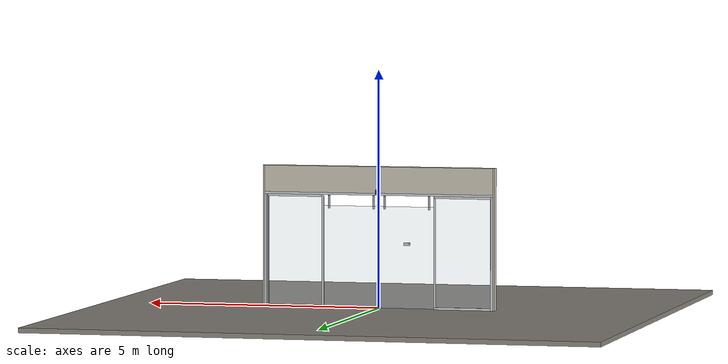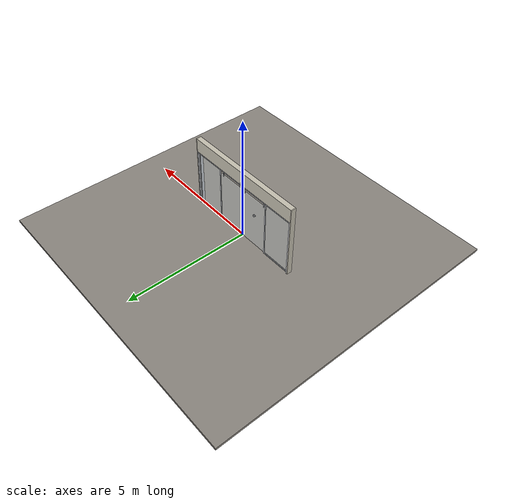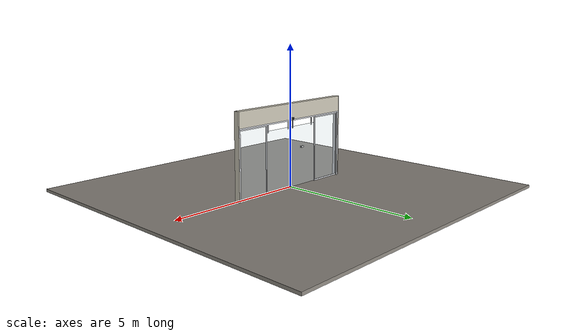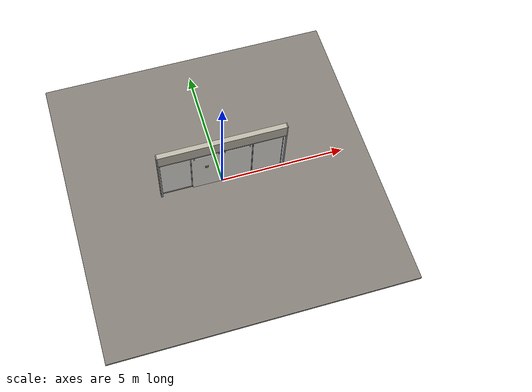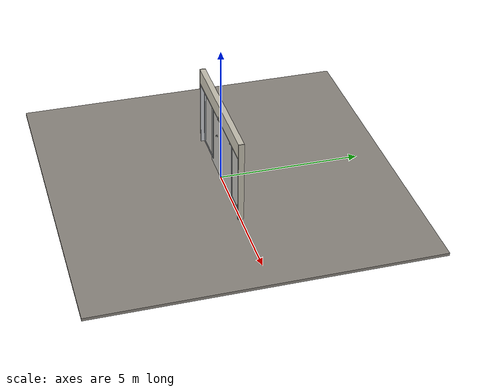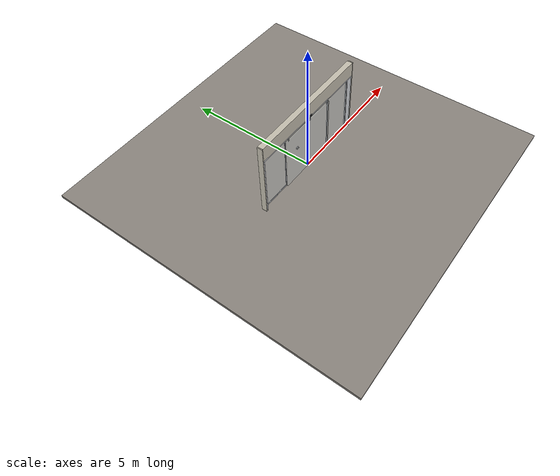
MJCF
<?xml version="1.0" ?>
<mujoco model="db0474_automatic_sliding_full">
  <compiler angle="radian" meshdir="../../hardware" texturedir="../../textures" autolimits="true" inertiafromgeom="false"/>
  <option timestep="0.002" integrator="implicitfast" cone="elliptic" impratio="10" noslip_iterations="3">
    <flag multiccd="enable"/>
  </option>
  <size memory="16M"/>
  <default>
    <geom condim="4" solref="0.005 1" solimp="0.95 0.99 0.001"/>
    <joint solreflimit="0.005 1" solimplimit="0.95 0.99 0.001"/>
    <tendon solreflimit="0.005 1"/>
    <equality solref="0.002 1"/>
  </default>
  <visual>
    <headlight ambient="0.4 0.4 0.4" diffuse="0.7 0.7 0.7" specular="0.2 0.2 0.2"/>
    <quality shadowsize="4096"/>
    <map znear="0.01" zfar="60"/>
  </visual>
  <asset>
    <material name="mat_floor" rgba="0.55 0.53 0.5 1" specular="0.2" shininess="0.15" reflectance="0"/>
    <material name="mat_wall" rgba="0.78 0.76 0.7 1" specular="0.2" shininess="0.1" reflectance="0"/>
    <material name="mat_frame" rgba="0.8 0.81 0.83 1" specular="0.8" shininess="0.6" reflectance="0.4"/>
    <material name="mat_track" rgba="0.8 0.81 0.83 1" specular="0.8" shininess="0.6" reflectance="0.4"/>
    <material name="mat_fixed_glass" rgba="0.85 0.92 0.95 0.25" specular="0.2" shininess="0.95" reflectance="0.1"/>
    <material name="mat_leaf_a" rgba="0.85 0.92 0.95 0.25" specular="0.2" shininess="0.95" reflectance="0.1"/>
    <material name="mat_glass_leaf" rgba="0.85 0.92 0.95 0.25" specular="0.2" shininess="0.95" reflectance="0.1"/>
    <material name="mat_patch" rgba="0.75 0.76 0.77 1" specular="0.8" shininess="0.65" reflectance="0.4"/>
    <material name="mat_roller" rgba="0.65 0.66 0.68 1" specular="0.74" shininess="0.5" reflectance="0.36"/>
    <material name="mat_leaf_b" rgba="0.85 0.92 0.95 0.25" specular="0.2" shininess="0.95" reflectance="0.1"/>
    <material name="mat_sign" rgba="0.75 0.76 0.77 1" specular="0.8" shininess="0.65" reflectance="0.4"/>
    <material name="mat_wallreader" rgba="0.05 0.05 0.05 1" specular="0.38" shininess="0.3" reflectance="0.12"/>
    <material name="mat_hook" rgba="0.75 0.76 0.77 1" specular="0.8" shininess="0.65" reflectance="0.4"/>
    <texture name="skybox" type="skybox" builtin="gradient" rgb1="0.6 0.7 0.85" rgb2="0.9 0.92 0.95" width="256" height="256"/>
  </asset>
  <worldbody>
    <light name="sun" pos="1.5 -2.5 4" dir="-0.3 0.5 -0.8" directional="true" diffuse="0.8 0.8 0.8" specular="0.3 0.3 0.3" castshadow="true"/>
    <light name="fill" pos="-1.5 2.5 3" dir="0.3 -0.5 -0.7" directional="true" diffuse="0.35 0.35 0.4" castshadow="false"/>
    <camera name="robot_view" pos="0 -5.1625 2.6375" xyaxes="1 0 0 0 0.26963 0.962964" fovy="52"/>
    <camera name="far_view" pos="0 5.1625 2.6375" xyaxes="-1 0 0 0 -0.26963 0.962964" fovy="52"/>
    <camera name="iso" pos="3.9235 -4.3365 3.4635" xyaxes="0.741536 0.670913 0 -0.242917 0.268487 0.932151" fovy="46"/>
    <camera name="detail_handle" pos="0.48 -0.8 1.28" xyaxes="0.97561 0.219512 0 -0.070934 0.315262 0.94635" fovy="38"/>
    <geom name="floor" type="box" size="6 6 0.05" pos="0 0 -0.05" material="mat_floor" group="0" contype="1" conaffinity="1" friction="0.8 0.005 0.0001" density="2400"/>
    <geom name="wall_left" type="box" size="0.0175 0.1 1.492" pos="-2.4825 0 1.492" material="mat_wall" group="0" contype="1" conaffinity="1" friction="0.6 0.005 0.0001" density="800"/>
    <geom name="wall_right" type="box" size="0.0175 0.1 1.492" pos="2.4825 0 1.492" material="mat_wall" group="0" contype="1" conaffinity="1" friction="0.6 0.005 0.0001" density="800"/>
    <geom name="wall_header" type="box" size="2.465 0.1 0.2775" pos="0 0 2.7065" material="mat_wall" group="0" contype="1" conaffinity="1" friction="0.6 0.005 0.0001" density="800"/>
    <geom name="jamb_l" type="box" size="0.0225 0.1 1.192" pos="-2.4425 0 1.192" material="mat_frame" group="0" contype="1" conaffinity="1" friction="0.6 0.005 0.0001" density="300"/>
    <geom name="jamb_r" type="box" size="0.0225 0.1 1.192" pos="2.4425 0 1.192" material="mat_frame" group="0" contype="1" conaffinity="1" friction="0.6 0.005 0.0001" density="300"/>
    <geom name="jamb_head" type="box" size="2.465 0.1 0.0225" pos="0 0 2.4065" material="mat_frame" group="0" contype="1" conaffinity="1" friction="0.6 0.005 0.0001" density="300"/>
    <geom name="sidelite_l" type="box" size="0.585 0.003 1.142" pos="-1.815 0.042 1.192" material="mat_fixed_glass" group="0" contype="1" conaffinity="1" friction="0.6 0.005 0.0001" density="2500"/>
    <geom name="sidelite_l_stile_n" type="box" size="0.02 0.012 1.192" pos="-2.42 0.042 1.192" material="mat_frame" group="0" contype="1" conaffinity="1" friction="0.6 0.005 0.0001" density="1400"/>
    <geom name="sidelite_l_stile_p" type="box" size="0.02 0.012 1.192" pos="-1.21 0.042 1.192" material="mat_frame" group="0" contype="1" conaffinity="1" friction="0.6 0.005 0.0001" density="1400"/>
    <geom name="sidelite_l_sill" type="box" size="0.625 0.012 0.025" pos="-1.815 0.042 0.025" material="mat_frame" group="0" contype="1" conaffinity="1" friction="0.6 0.005 0.0001" density="1400"/>
    <geom name="sidelite_l_head" type="box" size="0.625 0.012 0.025" pos="-1.815 0.042 2.359" material="mat_frame" group="0" contype="1" conaffinity="1" friction="0.6 0.005 0.0001" density="1400"/>
    <geom name="sidelite_r" type="box" size="0.585 0.003 1.142" pos="1.815 0.042 1.192" material="mat_fixed_glass" group="0" contype="1" conaffinity="1" friction="0.6 0.005 0.0001" density="2500"/>
    <geom name="sidelite_r_stile_n" type="box" size="0.02 0.012 1.192" pos="1.21 0.042 1.192" material="mat_frame" group="0" contype="1" conaffinity="1" friction="0.6 0.005 0.0001" density="1400"/>
    <geom name="sidelite_r_stile_p" type="box" size="0.02 0.012 1.192" pos="2.42 0.042 1.192" material="mat_frame" group="0" contype="1" conaffinity="1" friction="0.6 0.005 0.0001" density="1400"/>
    <geom name="sidelite_r_sill" type="box" size="0.625 0.012 0.025" pos="1.815 0.042 0.025" material="mat_frame" group="0" contype="1" conaffinity="1" friction="0.6 0.005 0.0001" density="1400"/>
    <geom name="sidelite_r_head" type="box" size="0.625 0.012 0.025" pos="1.815 0.042 2.359" material="mat_frame" group="0" contype="1" conaffinity="1" friction="0.6 0.005 0.0001" density="1400"/>
    <geom name="leaf_a_track_header" type="box" size="1.24 0.09 0.09" pos="-1.19 0 2.519" material="mat_track" group="0" contype="1" conaffinity="1" friction="0.6 0.005 0.0001" density="2700"/>
    <geom name="leaf_b_track_header" type="box" size="1.24 0.09 0.09" pos="1.19 0 2.519" material="mat_track" group="0" contype="1" conaffinity="1" friction="0.6 0.005 0.0001" density="2700"/>
    <geom name="wave_sensor_n" type="box" size="0.05 0.012 0.05" pos="0 -0.112 2.454" material="mat_wallreader" group="0" contype="1" conaffinity="1" friction="0.6 0.005 0.0001" density="1000"/>
    <geom name="wave_sensor_n_pad" type="box" size="0.04 0.0055 0.04" pos="0 -0.095 2.454" material="mat_wallreader" group="1" contype="0" conaffinity="0" density="7850"/>
    <geom name="wave_sensor_p" type="box" size="0.05 0.012 0.05" pos="0 0.112 2.454" material="mat_wallreader" group="0" contype="1" conaffinity="1" friction="0.6 0.005 0.0001" density="1000"/>
    <geom name="wave_sensor_p_pad" type="box" size="0.04 0.0055 0.04" pos="0 0.095 2.454" material="mat_wallreader" group="1" contype="0" conaffinity="0" density="7850"/>
    <site name="approach_point" pos="0 -1.5 0" quat="1 0 0 0" size="0.05" rgba="0.2 0.9 0.2 0.5" group="4"/>
    <site name="goal_point" pos="0 1.5 0" quat="1 0 0 0" size="0.05" rgba="0.2 0.9 0.2 0.5" group="4"/>
    <site name="door_plane_center" pos="0 0 1.192" quat="1 0 0 0" size="0.02" rgba="0.2 0.9 0.2 0.5" group="4"/>
    <body name="leaf_a" pos="-0.6 0 0">
      <inertial pos="0 0 1.118206" mass="88.383618" quat="-0.5 0.5 0.5 0.5" diaginertia="10.901192261 36.157858597 47.029892408"/>
      <joint name="leaf_a_slide" type="slide" axis="-1 0 0" limited="true" range="0 1.18" damping="6.41988" frictionloss="20.805224" armature="0.5"/>
      <geom name="leaf_a_glass" type="box" size="0.6 0.0225 1.067" pos="0 0 1.079" material="mat_glass_leaf" group="0" contype="1" conaffinity="1" friction="0.4 0.005 0.0001" density="1"/>
      <geom name="leaf_a_carrier_0" type="box" size="0.02 0.005 0.147" pos="-0.48 0 2.233" material="mat_roller" group="1" contype="0" conaffinity="0" density="7850"/>
      <geom name="leaf_a_carrier_wheel_0" type="cylinder" size="0.014 0.006" pos="-0.48 0 2.37" quat="0.707107 -0.707107 0 0" material="mat_roller" group="1" contype="0" conaffinity="0" density="7850"/>
      <geom name="leaf_a_carrier_1" type="box" size="0.02 0.005 0.147" pos="0.48 0 2.233" material="mat_roller" group="1" contype="0" conaffinity="0" density="7850"/>
      <geom name="leaf_a_carrier_wheel_1" type="cylinder" size="0.014 0.006" pos="0.48 0 2.37" quat="0.707107 -0.707107 0 0" material="mat_roller" group="1" contype="0" conaffinity="0" density="7850"/>
      <geom name="sign_push" type="box" size="0.06 0.001 0.03" pos="0 -0.0235 1.362" material="mat_sign" group="2" contype="0" conaffinity="0" density="7900"/>
      <geom name="sign_pull" type="box" size="0.06 0.001 0.03" pos="0 0.0235 1.362" material="mat_sign" group="2" contype="0" conaffinity="0" density="7900"/>
      <site name="leaf_a_edge_mid" pos="0.6 0 1.079" quat="1 0 0 0" size="0.02" rgba="0.2 0.9 0.2 0.5" group="4"/>
    </body>
    <body name="leaf_b" pos="0.6 0 0">
      <inertial pos="0 0 1.117275" mass="88.361582" quat="-0.5 0.5 0.5 0.5" diaginertia="10.939501134 36.266466235 47.177077782"/>
      <joint name="leaf_b_slide" type="slide" axis="1 0 0" limited="true" range="0 1.18" damping="6.41988" frictionloss="20.805224" armature="0.5"/>
      <geom name="leaf_b_glass" type="box" size="0.6 0.0225 1.067" pos="0 0 1.079" material="mat_glass_leaf" group="0" contype="1" conaffinity="1" friction="0.4 0.005 0.0001" density="1"/>
      <geom name="leaf_b_carrier_0" type="box" size="0.02 0.005 0.147" pos="-0.48 0 2.233" material="mat_roller" group="1" contype="0" conaffinity="0" density="7850"/>
      <geom name="leaf_b_carrier_wheel_0" type="cylinder" size="0.014 0.006" pos="-0.48 0 2.37" quat="0.707107 -0.707107 0 0" material="mat_roller" group="1" contype="0" conaffinity="0" density="7850"/>
      <geom name="leaf_b_carrier_1" type="box" size="0.02 0.005 0.147" pos="0.48 0 2.233" material="mat_roller" group="1" contype="0" conaffinity="0" density="7850"/>
      <geom name="leaf_b_carrier_wheel_1" type="cylinder" size="0.014 0.006" pos="0.48 0 2.37" quat="0.707107 -0.707107 0 0" material="mat_roller" group="1" contype="0" conaffinity="0" density="7850"/>
      <site name="leaf_b_edge_mid" pos="-0.6 0 1.079" quat="1 0 0 0" size="0.02" rgba="0.2 0.9 0.2 0.5" group="4"/>
    </body>
  </worldbody>
  <equality>
    <joint name="center_couple" joint1="leaf_b_slide" joint2="leaf_a_slide" polycoef="0 1 0 0 0" active="true"/>
  </equality>
  <actuator>
    <position name="leaf_a_drive" joint="leaf_a_slide" kp="400" kv="60" forcerange="-150 150" ctrlrange="0 1.18"/>
    <position name="leaf_b_drive" joint="leaf_b_slide" kp="400" kv="60" forcerange="-150 150" ctrlrange="0 1.18"/>
  </actuator>
  <sensor>
    <jointpos name="leaf_a_slide_pos" joint="leaf_a_slide"/>
    <jointvel name="leaf_a_slide_vel" joint="leaf_a_slide"/>
    <jointpos name="leaf_b_slide_pos" joint="leaf_b_slide"/>
    <jointvel name="leaf_b_slide_vel" joint="leaf_b_slide"/>
  </sensor>
</mujoco>
